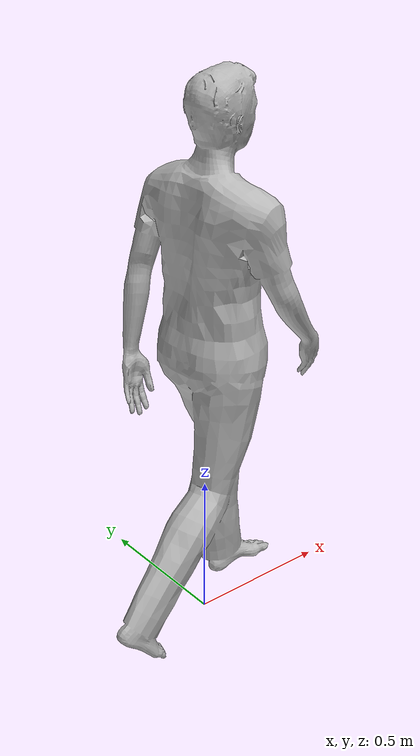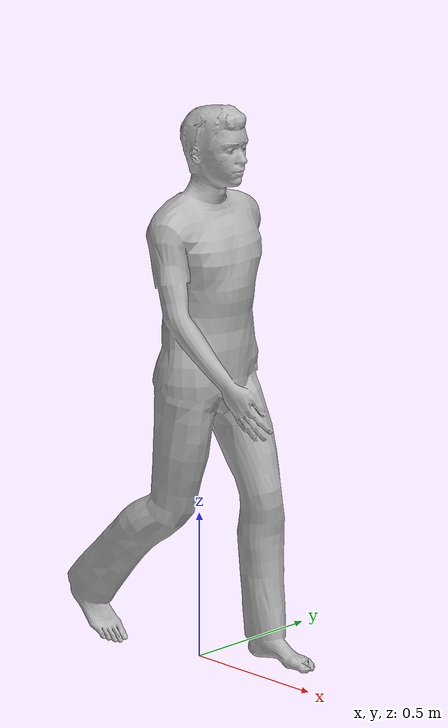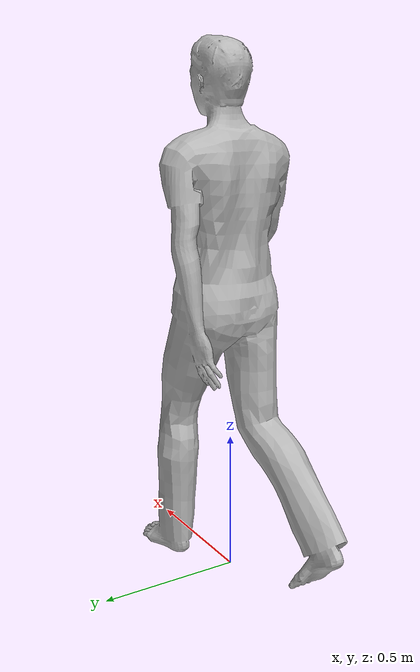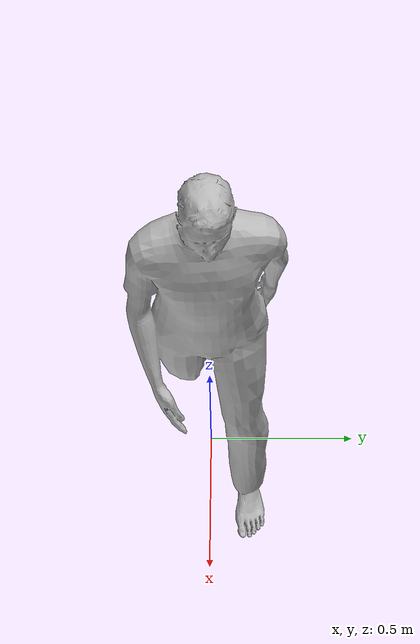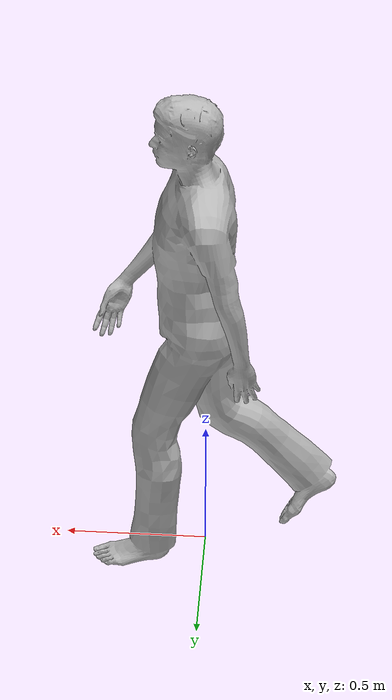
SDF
<?xml version="1.0" ?>
<sdf version="1.5">
  <model name="person_walking">
    <link name="link">
      <inertial>
        <pose>0 0 0.95 0 0 1.67</pose>
        <mass>80.0</mass>
        <inertia>
          <ixx>27.82</ixx>
          <ixy>0</ixy>
          <ixz>0</ixz>
          <iyy>24.88</iyy>
          <iyz>0</iyz>
          <izz>4.57</izz>
        </inertia>
      </inertial>

      <collision name="bottom">
        <pose>0 0 0.01 0 0 1.67</pose>
        <geometry>
          <box>
            <size>0.35 0.75 0.02</size>
          </box>
        </geometry>
      </collision>

      <collision name="person">
        <pose>0 0 -0.02 0 0 1.67</pose>
        <geometry>
          <mesh>
            <uri>model://person_walking/meshes/walking.dae</uri>
          </mesh>
        </geometry>
      </collision>

      <visual name="visual">
        <pose>0 0 -0.02 0 0 1.67</pose>
        <geometry>
          <mesh>
            <uri>model://person_walking/meshes/walking.dae</uri>
          </mesh>
        </geometry>
      </visual>
    </link>
    <plugin name="trajectory_controller" filename="libgazebo_ros_planar_move.so">
      <ros>
        <namespace>/human</namespace>
      </ros>
      <commandTopic>person_walking/cmd_vel</commandTopic>
      <odometryTopic>person_walking/odom</odometryTopic>
      <odometryFrame>odom</odometryFrame>
      <robotBaseFrame>link</robotBaseFrame>
      <update_rate>30</update_rate>
      <velocity>0.5</velocity> <!-- 运动速度（m/s） -->
      <direction>1 0 0</direction> <!-- 运动方向（x轴方向） -->
      <max_distance>5.0</max_distance> <!-- 最大运动距离后反向 -->
    </plugin>
  </model>
</sdf>
